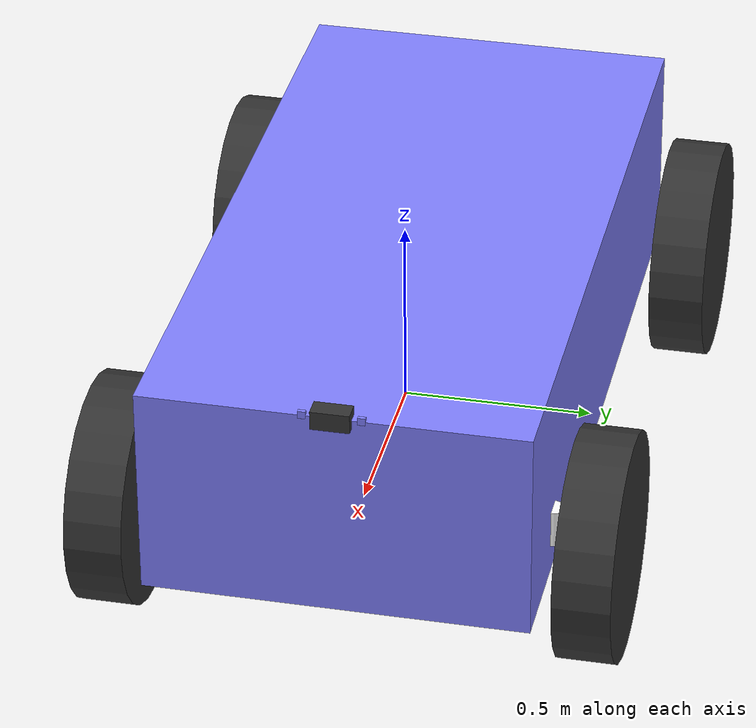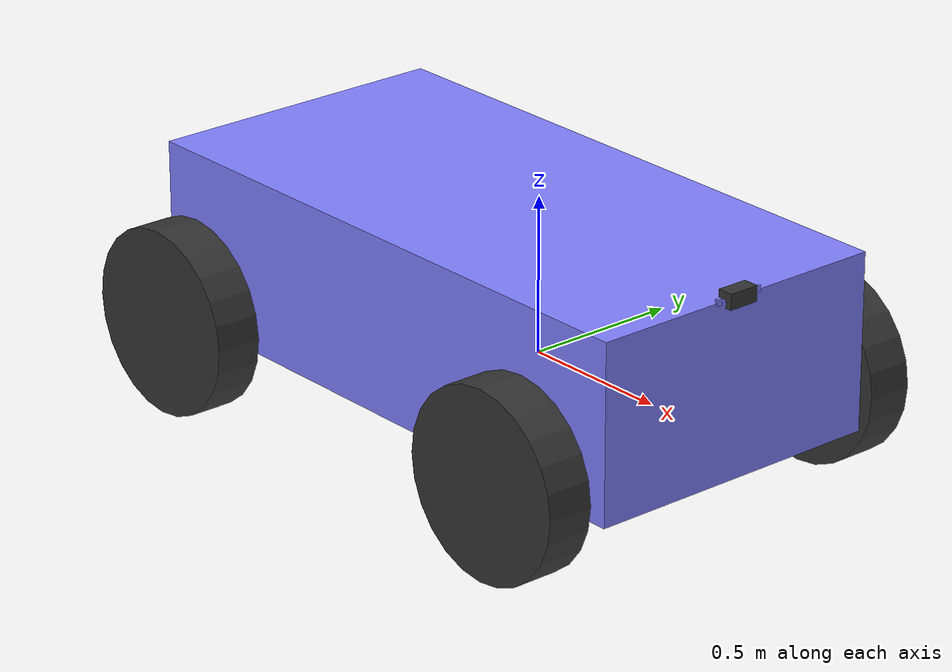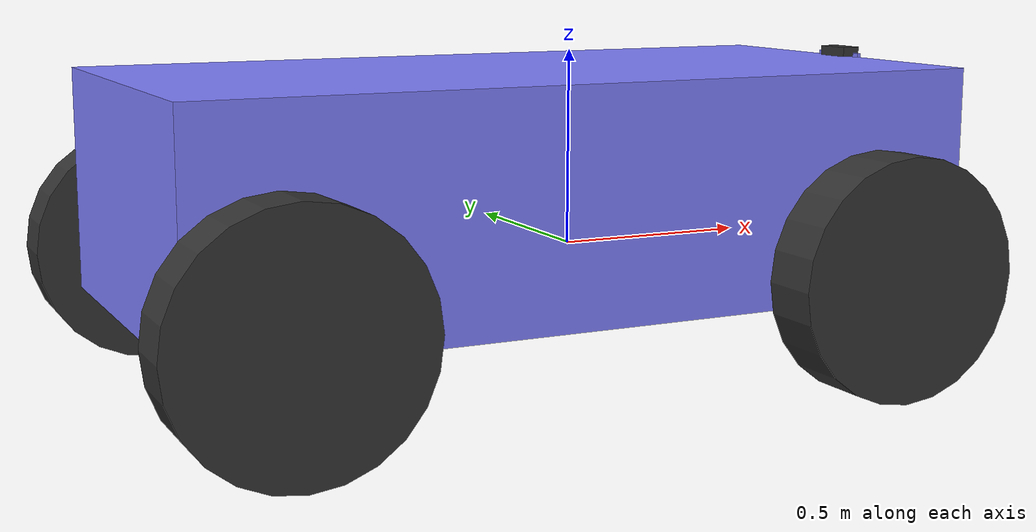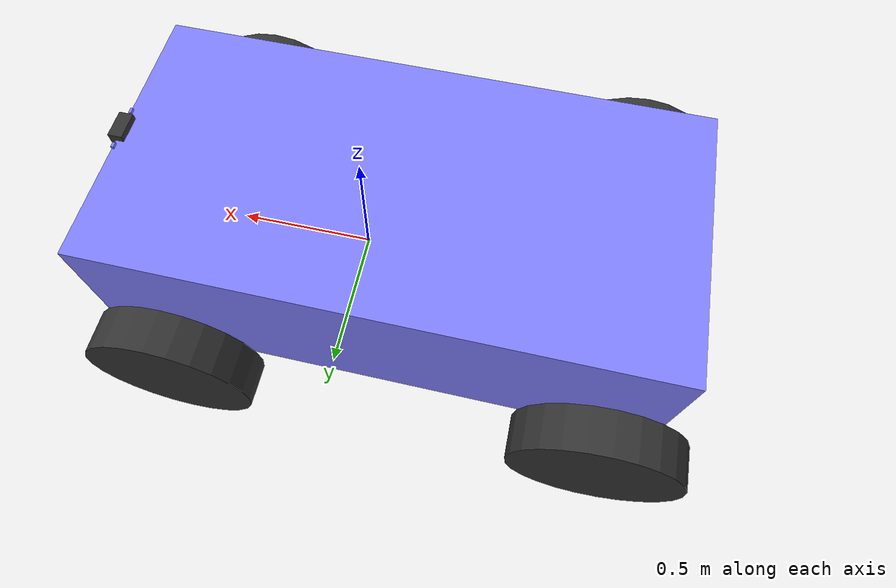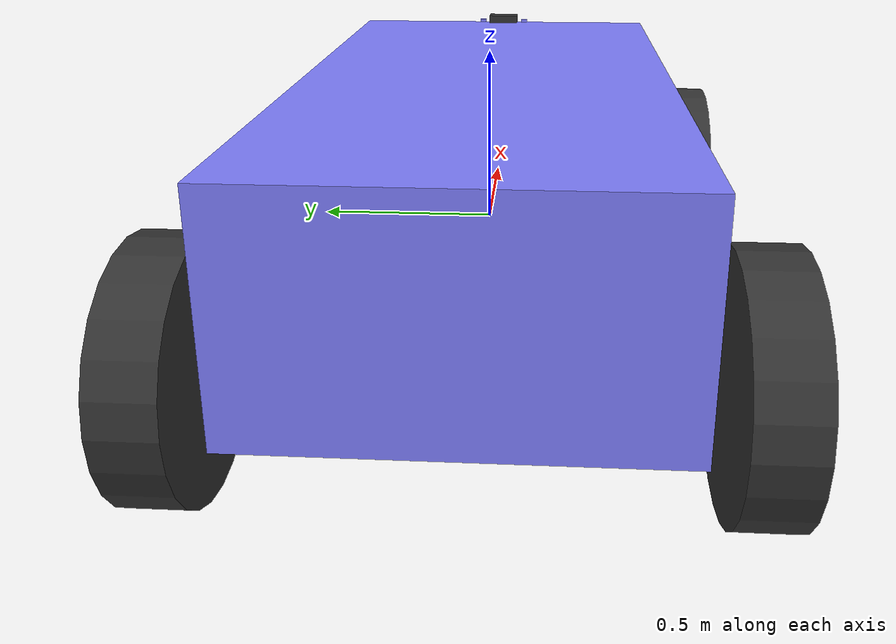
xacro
<?xml version="1.0"?>
<robot name="ackermann_car" xmlns:xacro="http://www.ros.org/wiki/xacro">

    <xacro:include filename="$(find my_gazebo_package)/models/oakd_camera.urdf.xacro" />
    <xacro:oakd_camera parent_link="chassis" x="0.85" y="0" z="0.46" />

    <material name="blue">
        <color rgba="0.5 0.5 1.0 1"/>
    </material>
    <material name="black">
        <color rgba="0.2 0.2 0.2 1"/>
    </material>
    <material name="white">
        <color rgba="1 1 1 1"/>
    </material>

    <link name="base_link"/>

    <joint name="base_link_joint" type="fixed">
        <parent link="base_link"/>
        <child link="chassis"/>
        <origin xyz="0 0 0" rpy="0 0 0"/>
    </joint>

    <link name="chassis">
        <visual>
            <origin xyz="-0.151427 0 0.175" rpy="0 0 0"/>
            <geometry>
                <box size="2.01142 1 0.568726"/>
            </geometry>
            <material name="blue"/>
        </visual>
        <collision>
            <origin xyz="-0.151427 0 0.175" rpy="0 0 0"/>
            <geometry>
                <box size="2.01142 1 0.568726"/>
            </geometry>
        </collision>
        <inertial>
            <origin xyz="-0.151427 0 0.175" rpy="0 0 0"/>
            <mass value="50.0"/>
            <inertia ixx="5.0" ixy="0" ixz="0" iyy="17.0" iyz="0" izz="20.0"/>
        </inertial>
    </link>

    <!-- IMU Link and Sensor -->
    <link name="imu_link">
        <inertial>
            <mass value="0.1"/>
            <inertia ixx="0.0001" ixy="0" ixz="0" iyy="0.0001" iyz="0" izz="0.0001"/>
        </inertial>
    </link>

    <joint name="imu_joint" type="fixed">
        <parent link="chassis"/>
        <child link="imu_link"/>
        <origin xyz="0 0 0" rpy="0 0 0"/>
    </joint>

    <gazebo reference="imu_link">
        <sensor name="imu_sensor" type="imu">
            <always_on>1</always_on>
            <update_rate>100</update_rate>
            <visualize>true</visualize>
            <topic>imu</topic>
            <plugin filename="gz-sim-imu-system" name="gz::sim::systems::Imu">
            </plugin>
        </sensor>
    </gazebo>

    <!-- Steering Links -->
    <link name="front_left_wheel_steering_link">
        <visual>
            <geometry>
                <cylinder length="0.1" radius="0.03"/>
            </geometry>
            <material name="white"/>
        </visual>
        <inertial>
            <mass value="5.0"/>
            <inertia ixx="0.0153" ixy="0" ixz="0" iyy="0.025" iyz="0" izz="0.0153"/>
        </inertial>
    </link>

    <joint name="front_left_wheel_steering_joint" type="revolute">
        <parent link="chassis"/>
        <child link="front_left_wheel_steering_link"/>
        <origin xyz="0.554283 0.5 0.02" rpy="0 0 0"/>
        <axis xyz="0 0 1"/>
        <limit lower="-0.6108" upper="0.6108" velocity="10.0" effort="1000"/>
    </joint>

    <link name="front_right_wheel_steering_link">
        <visual>
            <geometry>
                <cylinder length="0.1" radius="0.03"/>
            </geometry>
            <material name="white"/>
        </visual>
        <inertial>
            <mass value="5.0"/>
            <inertia ixx="0.0153" ixy="0" ixz="0" iyy="0.025" iyz="0" izz="0.0153"/>
        </inertial>
    </link>

    <joint name="front_right_wheel_steering_joint" type="revolute">
        <parent link="chassis"/>
        <child link="front_right_wheel_steering_link"/>
        <origin xyz="0.554283 -0.5 0.02" rpy="0 0 0"/>
        <axis xyz="0 0 1"/>
        <limit lower="-0.6108" upper="0.6108" velocity="10.0" effort="1000"/>
    </joint>

    <!-- Wheels Macro -->
    <xacro:macro name="wheel" params="name parent_link *origin">
        <link name="${name}">
            <visual>
                <origin xyz="0 0 0" rpy="1.570796 0 0"/>
                <geometry>
                    <cylinder length="0.15" radius="0.3"/>
                </geometry>
                <material name="black"/>
            </visual>
            <collision>
                <origin xyz="0 0 0" rpy="1.570796 0 0"/>
                <geometry>
                    <cylinder length="0.15" radius="0.3"/>
                </geometry>
            </collision>
            <inertial>
                <origin xyz="0 0 0" rpy="1.570796 0 0"/>
                <mass value="15.0"/>
                <inertia ixx="0.5" ixy="0" ixz="0" iyy="0.5" iyz="0" izz="0.7"/>
            </inertial>
        </link>
        <joint name="${name}_joint" type="continuous">
            <parent link="${parent_link}"/>
            <child link="${name}"/>
            <xacro:insert_block name="origin"/>
            <axis xyz="0 1 0"/>
            <limit effort="5000" velocity="100"/>
        </joint>
    </xacro:macro>

    <xacro:wheel name="front_left_wheel" parent_link="front_left_wheel_steering_link">
        <origin xyz="0 0.125029 -0.045" rpy="0 0 0"/>
    </xacro:wheel>

    <xacro:wheel name="front_right_wheel" parent_link="front_right_wheel_steering_link">
        <origin xyz="0 -0.125029 -0.045" rpy="0 0 0"/>
    </xacro:wheel>

    <xacro:wheel name="rear_left_wheel" parent_link="chassis">
        <origin xyz="-0.957138 0.625029 -0.025" rpy="0 0 0"/>
    </xacro:wheel>

    <xacro:wheel name="rear_right_wheel" parent_link="chassis">
        <origin xyz="-0.957138 -0.625029 -0.025" rpy="0 0 0"/>
    </xacro:wheel>

    <gazebo>
        <plugin
            filename="gz-sim-ackermann-steering-system"
            name="gz::sim::systems::AckermannSteering">
            <left_joint>front_left_wheel_joint</left_joint>
            <left_joint>rear_left_wheel_joint</left_joint>
            <right_joint>front_right_wheel_joint</right_joint>
            <right_joint>rear_right_wheel_joint</right_joint>
            <left_steering_joint>front_left_wheel_steering_joint</left_steering_joint>
            <right_steering_joint>front_right_wheel_steering_joint</right_steering_joint>
            <kingpin_width>1.0</kingpin_width>
            <steering_limit>0.6108</steering_limit>
            <steer_p_gain>3.0</steer_p_gain>
            <wheel_base>1.511</wheel_base>
            <wheel_separation>1.25</wheel_separation>
            <wheel_radius>0.3</wheel_radius>
            <topic>cmd_vel</topic>
            <odom_topic>odom</odom_topic>
            <frame_id>odom</frame_id>
            <child_frame_id>base_link</child_frame_id>
            <odom_publish_tf>false</odom_publish_tf>
            <min_velocity>-13.41</min_velocity>
            <max_velocity>13.41</max_velocity>
            <min_acceleration>-30</min_acceleration>
            <max_acceleration>30</max_acceleration>
        </plugin>

        <plugin
            filename="gz-sim-joint-state-publisher-system"
            name="gz::sim::systems::JointStatePublisher">
            <topic>joint_states</topic>
        </plugin>

    </gazebo>

</robot>

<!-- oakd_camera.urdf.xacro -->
<robot xmlns:xacro="http://www.ros.org/wiki/xacro">
  <xacro:macro name="oakd_camera" params="parent_link x:=1.0 y:=0 z:=0.25">
    <joint name="camera_base_joint" type="fixed">
      <parent link="${parent_link}"/>
      <child link="camera_base_link"/>
      <origin xyz="${x} ${y} ${z}" rpy="0 0 0"/>
    </joint>

    <link name="camera_base_link">
      <visual>
        <geometry>
          <box size="0.05 0.1 0.05"/>
        </geometry>
        <material name="black"/>
      </visual>
      <inertial>
        <mass value="0.1"/>
        <inertia ixx="0.0001" ixy="0.0" ixz="0.0" iyy="0.0001" iyz="0.0" izz="0.0001"/>
      </inertial>
    </link>

    <joint name="camera_rgb_joint" type="fixed">
      <parent link="camera_base_link"/>
      <child link="camera_link_rgb"/>
      <origin xyz="0 0 0" rpy="0 0 0"/>
    </joint>

    <link name="camera_link_rgb">
      <visual>
        <geometry>
          <box size="0.01 0.03 0.03"/>
        </geometry>
        <material name="blue"/>
      </visual>
      <inertial>
        <mass value="0.01"/>
        <inertia ixx="1e-6" ixy="0" ixz="0" iyy="1e-6" iyz="0" izz="1e-6"/>
      </inertial>
    </link>

    <joint name="camera_optical_joint" type="fixed">
      <parent link="camera_link_rgb"/>
      <child link="camera_link_optical"/>
      <origin xyz="0 0 0" rpy="-1.570796 0 -1.570796"/>
    </joint>

    <link name="camera_link_optical"/>

    <joint name="camera_left_joint" type="fixed">
      <parent link="camera_base_link"/>
      <child link="camera_link_left"/>
      <origin xyz="0 0.075 0" rpy="0 0 0"/>
    </joint>

    <link name="camera_link_left">
      <visual>
        <geometry>
          <box size="0.01 0.02 0.02"/>
        </geometry>
        <material name="blue"/>
      </visual>
      <inertial>
        <mass value="0.01"/>
        <inertia ixx="1e-6" ixy="0" ixz="0" iyy="1e-6" iyz="0" izz="1e-6"/>
      </inertial>
    </link>

    <joint name="camera_right_joint" type="fixed">
      <parent link="camera_base_link"/>
      <child link="camera_link_right"/>
      <origin xyz="0 -0.075 0" rpy="0 0 0"/>
    </joint>

    <link name="camera_link_right">
      <visual>
        <geometry>
          <box size="0.01 0.02 0.02"/>
        </geometry>
        <material name="blue"/>
      </visual>
      <inertial>
        <mass value="0.01"/>
        <inertia ixx="1e-6" ixy="0" ixz="0" iyy="1e-6" iyz="0" izz="1e-6"/>
      </inertial>
    </link>

    <!-- Gazebo sensor definitions -->
    <gazebo reference="camera_link_rgb">
      <sensor type="rgbd_camera" name="oakd_rgbd_camera">
        <update_rate>30.0</update_rate>
        <camera name="head">
          <horizontal_fov>1.396</horizontal_fov>
          <image>
            <width>1280</width>
            <height>800</height>
            <format>R8G8B8</format>
          </image>
          <clip>
            <near>0.02</near>
            <far>300.0</far>
          </clip>
          <depth_camera>
            <clip>
              <near>0.7</near>
              <far>30.0</far>
            </clip>
          </depth_camera>
          <noise>
            <type>gaussian</type>
            <mean>0.0</mean>
            <stddev>0.007</stddev>
          </noise>
        </camera>
        <topic>/oakd/rgbd_camera</topic>
        <gz_frame_id>camera_link_optical</gz_frame_id>
      </sensor>
    </gazebo>

    <gazebo reference="camera_link_left">
      <sensor type="camera" name="left_camera">
        <update_rate>30.0</update_rate>
        <camera name="left">
          <horizontal_fov>1.396</horizontal_fov>
          <image>
            <width>1280</width>
            <height>800</height>
            <format>L8</format>
          </image>
          <clip>
            <near>0.02</near>
            <far>300</far>
          </clip>
        </camera>
        <topic>/oakd/left/image_raw</topic>
        <camera_info_topic>/oakd/left/camera_info</camera_info_topic>
      </sensor>
    </gazebo>

    <gazebo reference="camera_link_right">
      <sensor type="camera" name="right_camera">
        <update_rate>30.0</update_rate>
        <camera name="right">
          <horizontal_fov>1.396</horizontal_fov>
          <image>
            <width>1280</width>
            <height>800</height>
            <format>L8</format>
          </image>
          <clip>
            <near>0.02</near>
            <far>300</far>
          </clip>
        </camera>
        <topic>/oakd/right/image_raw</topic>
        <camera_info_topic>/oakd/right/camera_info</camera_info_topic>
      </sensor>
    </gazebo>
  </xacro:macro>
</robot>
